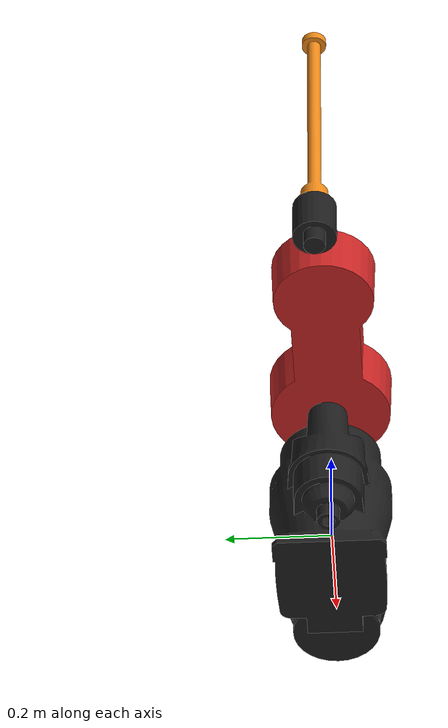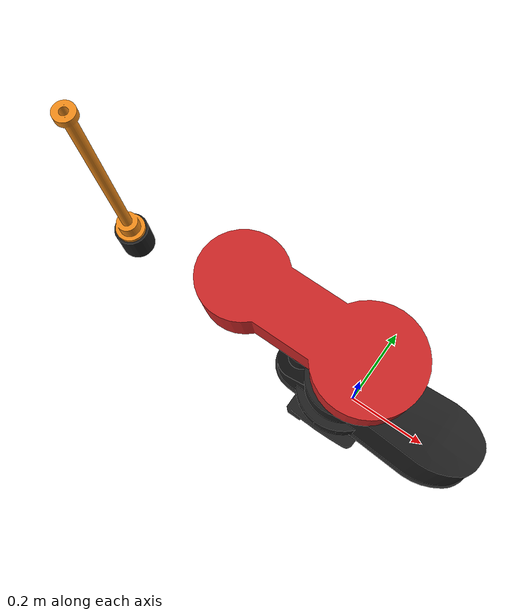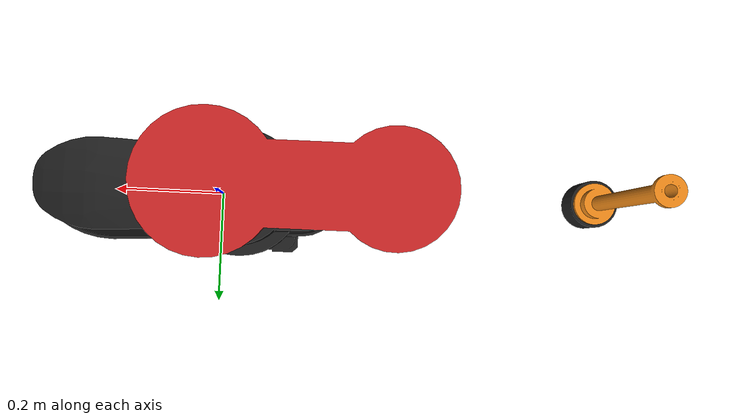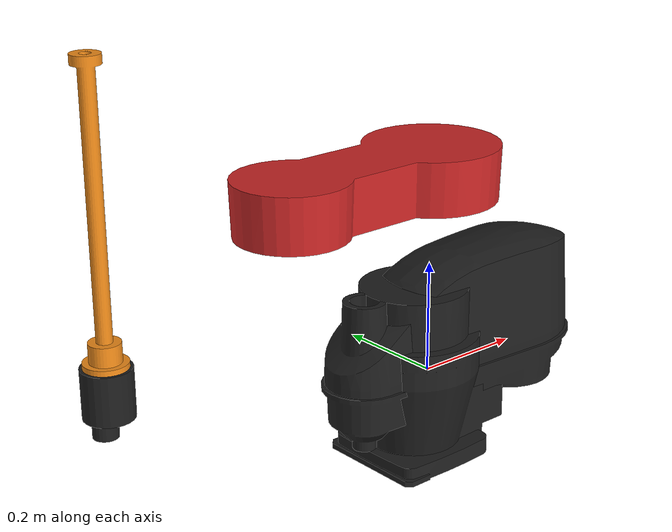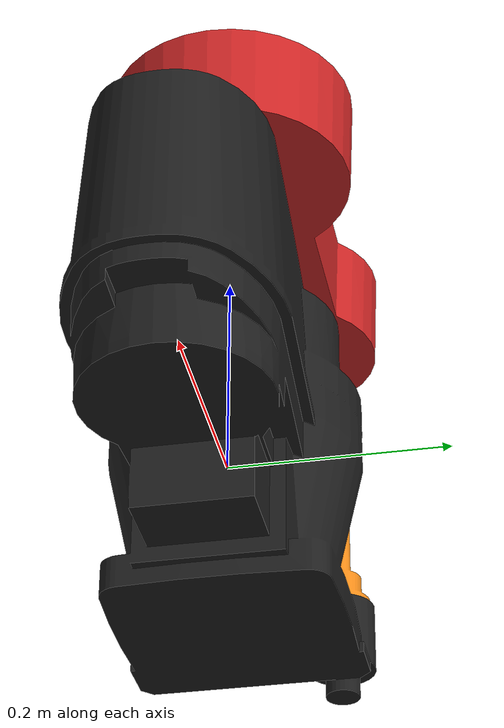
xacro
<?xml version="1.0"?>

<!-- Added the end effector casing as well as the Suction Gripper-->
<robot name="sr_scara_hx" xmlns:xacro="http://www.ros.org/wiki/xacro">

<xacro:property name="mass" value="1.000" /> 	  <!-- arbitrary value for mass -->
<xacro:property name="pos0" value="0.00158925" /> <!-- Link 1 -->
<xacro:property name="pos2" value="0.300" />      <!-- Link 2 -->
<xacro:property name="pos3" value="0" />          <!-- Link 3 -->

<!-- Import all Gazebo-customization elements, including Gazebo colors -->
<xacro:include filename="$(find robot_simulation)/URDF/sr_scara_hx.gazebo" />
<!-- Import Rviz colors -->
<xacro:include filename="$(find robot_simulation)/URDF/materials.xacro" />

<!--Links -->
<link name="base_link">
 <visual>
  <origin xyz="0 0 0.00158925" rpy="0 0 0" />
   <geometry>
     <mesh filename="package://robot_simulation/meshes/base_R01.stl" scale="0.001 0.001 0.001"/>
   </geometry>
   <material name="black"/>
 </visual>
 <collision>
  <origin xyz="0 0 0.00158925" rpy="0 0 0" />
   <geometry>
     <mesh filename="package://robot_simulation/meshes/base_R01.stl" scale="0.001 0.001 0.001"/>
   </geometry>
 </collision>
 <inertial>
      <origin xyz="0 0 0.00158925" rpy="0 0 0"/>
      <mass value="30.0"/>
      <inertia
	  ixx="1.0" ixy="0.0" ixz="0.0"
	  iyy="1.0" iyz="0.0"
	  izz="1.0"/>
 </inertial>
</link>

<link name="link1">
 <visual>
  <origin xyz="0 0 0" rpy="0 0 0" />
   <geometry>
     <mesh filename="package://robot_simulation/meshes/arm_link_R01.stl" scale="0.001 0.001 0.001"/>
   </geometry>
   <material name="red"/>
 </visual>
 <collision>
  <origin xyz="0 0 0" rpy="0 0 0" />
   <geometry>
     <mesh filename="package://robot_simulation/meshes/arm_link_R01.stl" scale="0.001 0.001 0.001"/>
   </geometry>
 </collision>
 <inertial>
      <origin xyz="0 0 0" rpy="0 0 0"/>
      <mass value="10.0"/>
      <inertia
	  ixx="1.0" ixy="0.0" ixz="0.0"
	  iyy="1.0" iyz="0.0"
	  izz="1.0"/>
 </inertial>
</link>

<link name="link2">
 <visual>
  <origin xyz="0.300 0 0" rpy="0 0 0" />
   <geometry>
     <mesh filename="package://robot_simulation/meshes/head_link_R01.stl" scale="0.001 0.001 0.001"/>
   </geometry>
   <material name="black"/>
 </visual>
 <collision>
  <origin xyz="0.300 0 0" rpy="0 0 0" />
   <geometry>
     <mesh filename="package://robot_simulation/meshes/head_link_R01.stl" scale="0.001 0.001 0.001"/>
   </geometry>
  </collision>
 <inertial>
      <origin xyz="0.300 0 0" rpy="0 0 0"/>
      <mass value="10.0"/>
      <inertia
	  ixx="1.0" ixy="0.0" ixz="0.0"
	  iyy="1.0" iyz="0.0"
	  izz="1.0"/>
 </inertial>
</link>

<link name="probe">
 <visual>
  <origin xyz="-0.65 0 0.43" rpy="0 0 0" />
  <geometry>
     <mesh filename="package://robot_simulation/meshes/End_link_R01.stl" scale="0.001 0.001 0.001"/>
  </geometry>
  <material name="orange"/>
 </visual>
 <collision>
  <origin xyz="-0.65 0 0.43" rpy="0 0 0" />
  <geometry>
     <mesh filename="package://robot_simulation/meshes/End_link_R01.stl" scale="0.001 0.001 0.001"/>
  </geometry>
 </collision>
 <inertial>
      <origin xyz="-0.65 0 0.43" rpy="0 0 0"/>
      <mass value="2.0"/>
      <inertia
	  ixx="1.0" ixy="0.0" ixz="0.0"
	  iyy="1.0" iyz="0.0"
	  izz="1.0"/>
 </inertial>
</link>

<link name="gripper">
 <visual>
  <origin xyz="0 0 0" rpy="0 0 0"/>
  <geometry>
  <cylinder length="0.08" radius="0.04"/>
  </geometry>
  <material name="black"/>
 </visual>
 <collision>
  <origin xyz="0 0 0" rpy="0 0 0"/>
  <geometry>
  <cylinder length="0.08" radius="0.04"/>
  </geometry>
 </collision>
 <inertial>
     <origin xyz="0 0 0" rpy="0 0 0"/>
     <mass value="0.3"/>
     <inertia
         ixx="1.0" ixy="0.0" ixz="0.0"
	 iyy="1.0" iyz="0.0"
	 izz="1.0"/>
 </inertial>
</link>

<link name="gripper_end_effector">
 <visual>
  <origin xyz="0 0 0" rpy="0 0 0"/>
  <geometry>
  <cylinder length="0.04" radius="0.02"/>
  </geometry>
  <material name="black"/>
 </visual>
 <collision>
  <origin xyz="0 0 0" rpy="0 0 0"/>
  <geometry>
  <cylinder length="0.001" radius="0.004"/>
  </geometry>
 </collision>
 <inertial>
     <origin xyz="0 0 0" rpy="0 0 0"/>
     <mass value="0.1"/>
     <inertia
         ixx="1.0" ixy="0.0" ixz="0.0"
	 iyy="1.0" iyz="0.0"
	 izz="1.0"/>
 </inertial>
</link>

<!-- Joints -->

<joint name="joint1" type="revolute">
  <axis xyz="0 0 1" />
  <limit effort="3.0" velocity="0.01" lower="-2.792" upper="2.792"/>
  <origin xyz="0 0 0.00158925" rpy="0 0 0" />
  <parent link="base_link" />
  <child link="link1" />
</joint>

<joint name="joint2" type="revolute">
 <axis xyz="0 0 1" />
 <limit effort="3.0" velocity="0.01" lower="-2.443" upper="2.443"/>
 <origin xyz="-0.3 0 0" rpy="0 0 0" />
 <parent link="link1" />
 <child link="link2" />
</joint>

<joint name="joint3" type="prismatic">
 <axis xyz="0 0 1" />
 <limit effort="3.0" velocity="0.01" lower="0.0" upper="0.13"/>
 <origin xyz="0.3 0 0" rpy="0 0 0" />
 <parent link="link2" />
 <child link="probe" />
</joint>

<joint name ="joint4" type="fixed">
 <origin xyz="-0.65 0 0.158" rpy="0 0 0"/>
 <parent link = "probe"/>
 <child link = "gripper"/>
</joint>

<joint name ="joint5" type="fixed">
 <origin xyz="-0.008 0 -0.05" rpy="0 0 0"/>
 <parent link = "gripper"/>
 <child link = "gripper_end_effector"/>
</joint>

<!-- Transmissions -->

<transmission name="tran1">
  <type>transmission_interface/SimpleTransmission</type>
    <joint name="joint1">
      <hardwareInterface>PositionJointInterface</hardwareInterface>
    </joint>
    <actuator name="motor1">
      <hardwareInterface>PositionJointInterface</hardwareInterface>
      <mechanicalReduction>1</mechanicalReduction>
    </actuator>
</transmission>

<transmission name="tran2">
   <type>transmission_interface/SimpleTransmission</type>
    <joint name="joint2">
      <hardwareInterface>PositionJointInterface</hardwareInterface>
    </joint>
    <actuator name="motor2">
      <hardwareInterface>PositionJointInterface</hardwareInterface>
      <mechanicalReduction>1</mechanicalReduction>
    </actuator>
</transmission>

<transmission name="tran3">
   <type>transmission_interface/SimpleTransmission</type>
    <joint name="joint3">
      <hardwareInterface>PositionJointInterface</hardwareInterface>
    </joint>
    <actuator name="motor3">
      <hardwareInterface>PositionJointInterface</hardwareInterface>
      <mechanicalReduction>1</mechanicalReduction>
    </actuator>
</transmission>
</robot>
